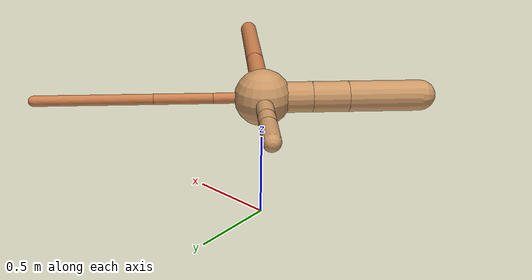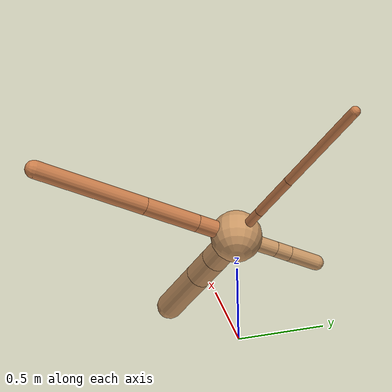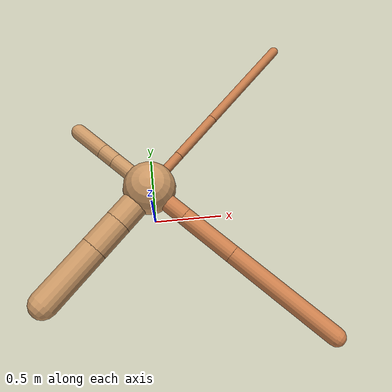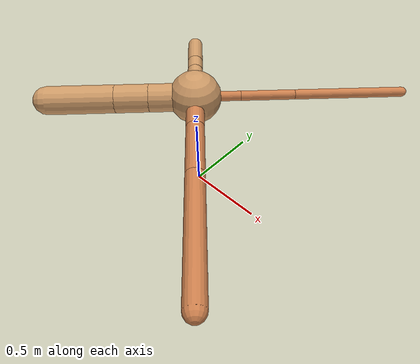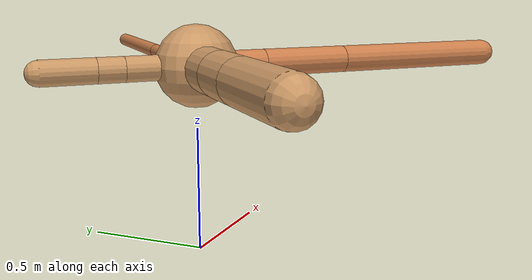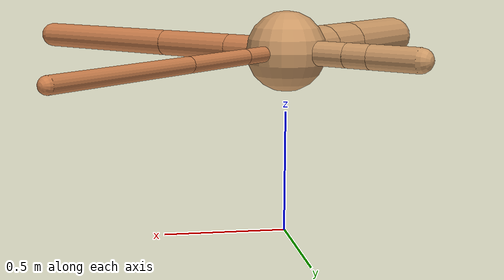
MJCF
<?xml version="1.0" ?>
<mujoco model="ant">

	<compiler angle="degree" coordinate="local" inertiafromgeom="true"/>

	<option integrator="RK4" timestep="0.01"/>

	<custom>

		<numeric data="0.0 0.0 0.55 1.0 0.0 0.0 0.0 0.0 1.0 0.0 -1.0 0.0 -1.0 0.0 1.0" name="init_qpos"/>

	</custom>

	<default>

		<joint armature="1" damping="1" limited="true"/>

		<geom conaffinity="0" condim="3" density="5.0" friction="1.5 0.1 0.1" margin="0.01" rgba="0.8 0.6 0.4 1"/>

	</default>

	<worldbody>

		<body name="torso" pos="0 0 0.75">

			<geom name="torso_geom" pos="0 0 0" size="0.16404728627225884" type="sphere"/>

			<!--joint armature="0" damping="0" limited="false" margin="0.01" name="root" pos="0 0 0" type="free"/-->

			<body name="front_left_leg" pos="0 0 0">

				<geom fromto="0 0 0 0.2 0.2 0" name="aux_1_geom" size="0.03062626301964574" type="capsule" rgba=".8 .5 .3 1"/>

				<body name="aux_1" pos="0.2 0.2 0">

					<joint axis="0 0 1" name="hip_1" pos="0.0 0.0 0.0" range="-40 40" type="hinge"/>

					<geom fromto="0 0 0 0.23820811300249584 0.23820811300249584 0" name="left_leg_geom" size="0.03062626301964574" type="capsule" rgba=".8 .5 .3 1"/>

					<body pos="0.23820811300249584 0.23820811300249584 0" name="front_left_foot">

						<joint axis="-1 1 0" name="ankle_1" pos="0.0 0.0 0.0" range="30 100" type="hinge"/>

						<geom fromto="0 0 0 0.47641622600499167 0.47641622600499167 0" name="left_ankle_geom" size="0.03062626301964574" type="capsule" rgba=".8 .5 .3 1"/>

					</body>

				</body>

			</body>

			<body name="front_right_leg" pos="0 0 0">

				<geom fromto="0 0 0 -0.2 0.2 0" name="aux_2_geom" size="0.04971051974773678" type="capsule"/>

				<body name="aux_2" pos="-0.2 0.2 0">

					<joint axis="0 0 1" name="hip_2" pos="0.0 0.0 0.0" range="-40 40" type="hinge"/>

					<geom fromto="0 0 0 -0.07368863183621613 0.07368863183621613 0" name="right_leg_geom" size="0.04971051974773678" type="capsule"/>

					<body pos="-0.07368863183621613 0.07368863183621613 0" name="front_right_foot">

						<joint axis="1 1 0" name="ankle_2" pos="0.0 0.0 0.0" range="-100 -30" type="hinge"/>

						<geom fromto="0 0 0 -0.14737726367243226 0.14737726367243226 0" name="right_ankle_geom" size="0.04971051974773678" type="capsule"/>

					</body>

				</body>

			</body>

			<body name="left_back_leg" pos="0 0 0">

				<geom fromto="0 0 0 -0.2 -0.2 0" name="aux_3_geom" size="0.08836304148761993" type="capsule"/>

				<body name="aux_3" pos="-0.2 -0.2 0">

					<joint axis="0 0 1" name="hip_3" pos="0.0 0.0 0.0" range="-40 40" type="hinge"/>

					<geom fromto="0 0 0 -0.146431704543538 -0.146431704543538 0" name="back_leg_geom" size="0.08836304148761993" type="capsule"/>

					<body pos="-0.146431704543538 -0.146431704543538 0" name="left_back_foot">

						<joint axis="-1 1 0" name="ankle_3" pos="0.0 0.0 0.0" range="-100 -30" type="hinge"/>

						<geom fromto="0 0 0 -0.292863409087076 -0.292863409087076 0" name="third_ankle_geom" size="0.08836304148761993" type="capsule"/>

					</body>

				</body>

			</body>

			<body name="right_back_leg" pos="0 0 0">

				<geom fromto="0 0 0 0.2 -0.2 0" name="aux_4_geom" size="0.05498087325782544" type="capsule" rgba=".8 .5 .3 1"/>

				<body name="aux_4" pos="0.2 -0.2 0">

					<joint axis="0 0 1" name="hip_4" pos="0.0 0.0 0.0" range="-40 40" type="hinge"/>

					<geom fromto="0 0 0 0.25348822628509654 -0.25348822628509654 0" name="rightback_leg_geom" size="0.05498087325782544" type="capsule" rgba=".8 .5 .3 1"/>

					<body pos="0.25348822628509654 -0.25348822628509654 0" name="right_back_foot">

						<joint axis="1 1 0" name="ankle_4" pos="0.0 0.0 0.0" range="30 100" type="hinge"/>

						<geom fromto="0 0 0 0.5069764525701931 -0.5069764525701931 0" name="fourth_ankle_geom" size="0.05498087325782544" type="capsule" rgba=".8 .5 .3 1"/>

					</body>

				</body>

			</body>

		</body>

	</worldbody>

	<actuator>

		<motor ctrllimited="true" ctrlrange="-1.0 1.0" joint="hip_4" gear="150"/>

		<motor ctrllimited="true" ctrlrange="-1.0 1.0" joint="ankle_4" gear="150"/>

		<motor ctrllimited="true" ctrlrange="-1.0 1.0" joint="hip_1" gear="150"/>

		<motor ctrllimited="true" ctrlrange="-1.0 1.0" joint="ankle_1" gear="150"/>

		<motor ctrllimited="true" ctrlrange="-1.0 1.0" joint="hip_2" gear="150"/>

		<motor ctrllimited="true" ctrlrange="-1.0 1.0" joint="ankle_2" gear="150"/>

		<motor ctrllimited="true" ctrlrange="-1.0 1.0" joint="hip_3" gear="150"/>

		<motor ctrllimited="true" ctrlrange="-1.0 1.0" joint="ankle_3" gear="150"/>

	</actuator>

</mujoco>
